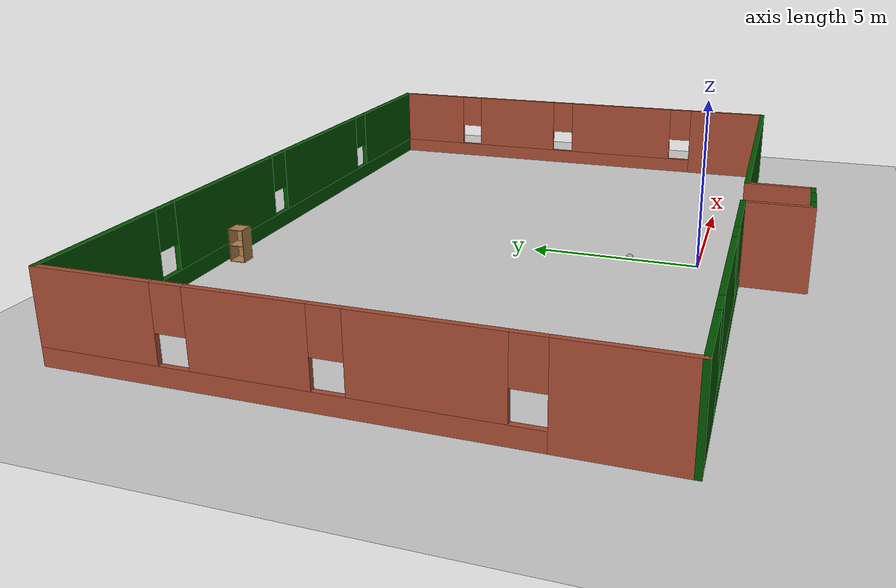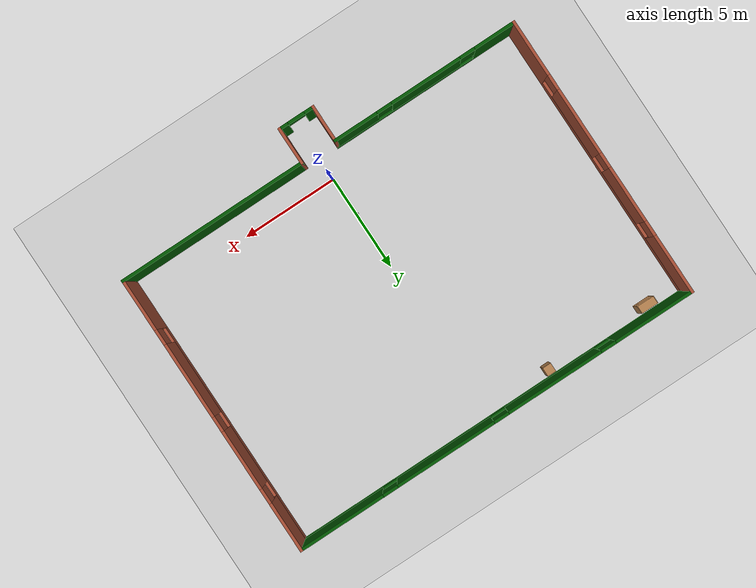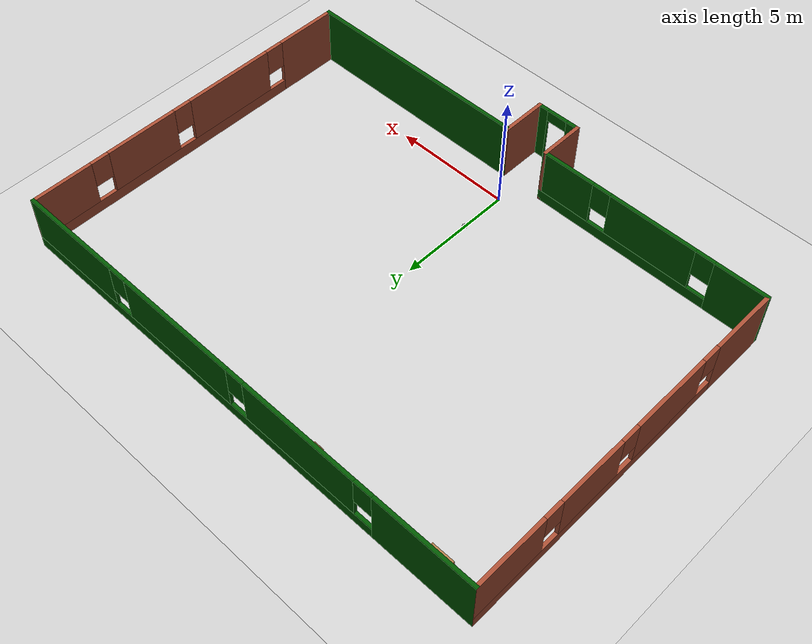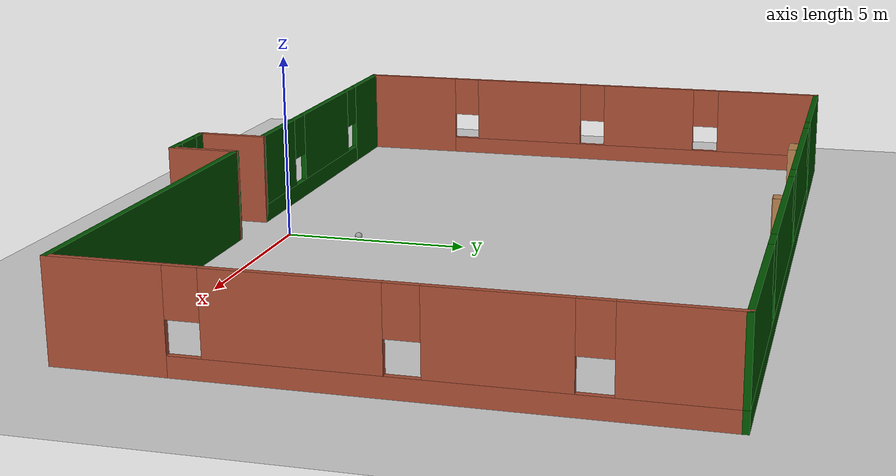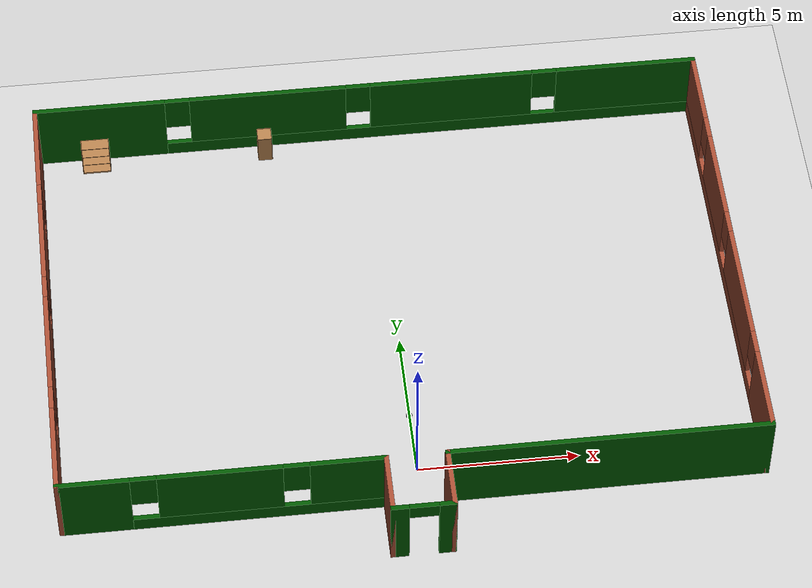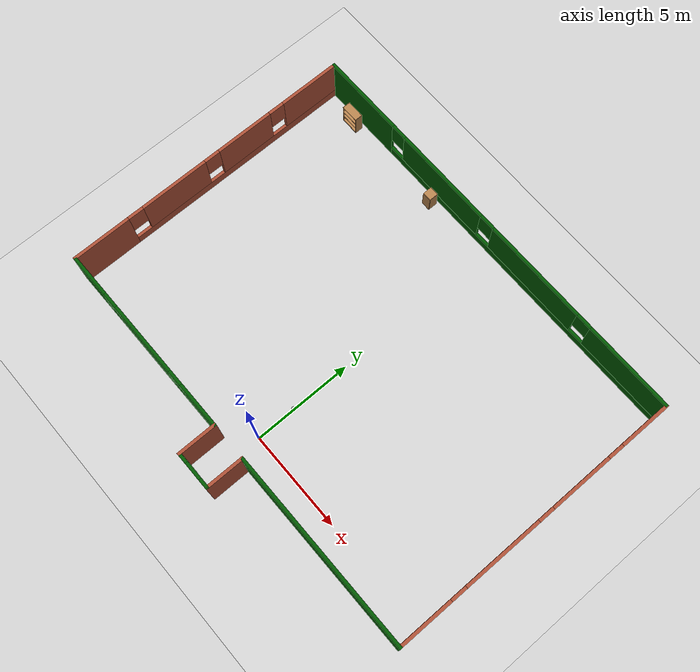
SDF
<sdf version="1.6">
 <world name="default">
  <light name="sun" type="directional">
   <pose>0 0 10 0 -0 0</pose>
   <diffuse>0.8 0.8 0.8 1</diffuse>
   <specular>0.2 0.2 0.2 1</specular>
   <attenuation>
    <range>1000</range>
    <constant>0.9</constant>
    <linear>0.01</linear>
    <quadratic>0.001</quadratic>
   </attenuation>
   <direction>-0.5 0.1 -0.9</direction>
  </light>
  <model name="ground_plane">
   <static>1</static>
   <link name="link">
    <collision name="collision">
     <geometry><plane><normal>0 0 1</normal><size>100 100</size></plane></geometry>
     <surface>
      <contact><collide_bitmask>65535</collide_bitmask></contact>
      <friction><ode><mu>100</mu><mu2>50</mu2></ode></friction>
     </surface>
    </collision>
    <visual name="visual">
     <cast_shadows>0</cast_shadows>
     <geometry><plane><normal>0 0 1</normal><size>100 100</size></plane></geometry>
     <material>
      <script><uri>file://media/materials/scripts/gazebo.material</uri><name>Gazebo/Grey</name></script>
     </material>
    </visual>
   </link>
  </model>
  <gravity>0 0 -9.8</gravity>
  <magnetic_field>6e-06 2.3e-05 -4.2e-05</magnetic_field>
  <atmosphere type="adiabatic"/>
  <physics name="default_physics" default="0" type="ode">
   <max_step_size>0.001</max_step_size>
   <real_time_factor>1</real_time_factor>
   <real_time_update_rate>1000</real_time_update_rate>
  </physics>
  <scene><ambient>0.4 0.4 0.4 1</ambient><background>0.7 0.7 0.7 1</background><shadows>1</shadows></scene>
  <spherical_coordinates>
   <surface_model>EARTH_WGS84</surface_model>
   <latitude_deg>0</latitude_deg>
   <longitude_deg>0</longitude_deg>
   <elevation>0</elevation>
   <heading_deg>0</heading_deg>
  </spherical_coordinates>
  <model name="awesomeWorld">
   <pose>-0.150676 5.3134 0 0 -0 0</pose>
   <link name="Wall_10">
    <pose>0 -8.35 0 0 -0 0</pose>
    <visual name="Wall_10_Visual_0">
     <pose>-0.719355 0 1.25 0 -0 0</pose>
     <geometry><box><size>0.56129 0.15 2.5</size></box></geometry>
     <material>
      <script><uri>file://media/materials/scripts/gazebo.material</uri><name>Gazebo/Grey</name></script>
      <ambient>0 0.333333 0 1</ambient>
     </material>
     <meta><layer>0</layer></meta>
    </visual>
    <collision name="Wall_10_Collision_0">
     <geometry><box><size>0.56129 0.15 2.5</size></box></geometry>
     <pose>-0.719355 0 1.25 0 -0 0</pose>
    </collision>
    <visual name="Wall_10_Visual_1">
     <pose>0.730645 0 1.25 0 -0 0</pose>
     <geometry><box><size>0.53871 0.15 2.5</size></box></geometry>
     <material>
      <script><uri>file://media/materials/scripts/gazebo.material</uri><name>Gazebo/Grey</name></script>
      <ambient>0 0.333333 0 1</ambient>
     </material>
     <meta><layer>0</layer></meta>
    </visual>
    <collision name="Wall_10_Collision_1">
     <geometry><box><size>0.53871 0.15 2.5</size></box></geometry>
     <pose>0.730645 0 1.25 0 -0 0</pose>
    </collision>
    <visual name="Wall_10_Visual_2">
     <pose>0.01129 0 2.25 0 -0 0</pose>
     <geometry><box><size>0.9 0.15 0.5</size></box></geometry>
     <material>
      <script><uri>file://media/materials/scripts/gazebo.material</uri><name>Gazebo/Grey</name></script>
      <ambient>0 0.333333 0 1</ambient>
     </material>
     <meta><layer>0</layer></meta>
    </visual>
    <collision name="Wall_10_Collision_2">
     <geometry><box><size>0.9 0.15 0.5</size></box></geometry>
     <pose>0.01129 0 2.25 0 -0 0</pose>
    </collision>
   </link>
   <link name="Wall_11">
    <collision name="Wall_11_Collision">
     <geometry><box><size>2 0.15 2.5</size></box></geometry>
     <pose>0 0 1.25 0 -0 0</pose>
    </collision>
    <visual name="Wall_11_Visual">
     <pose>0 0 1.25 0 -0 0</pose>
     <geometry><box><size>2 0.15 2.5</size></box></geometry>
     <material>
      <script><uri>file://media/materials/scripts/gazebo.material</uri><name>Gazebo/Bricks</name></script>
      <ambient>1 1 1 1</ambient>
     </material>
     <meta><layer>0</layer></meta>
    </visual>
    <pose>0.925 -7.425 0 0 -0 1.5708</pose>
   </link>
   <link name="Wall_12">
    <collision name="Wall_12_Collision">
     <geometry><box><size>10 0.15 2.5</size></box></geometry>
     <pose>0 0 1.25 0 -0 0</pose>
    </collision>
    <visual name="Wall_12_Visual">
     <pose>0 0 1.25 0 -0 0</pose>
     <geometry><box><size>10 0.15 2.5</size></box></geometry>
     <material>
      <script><uri>file://media/materials/scripts/gazebo.material</uri><name>Gazebo/Grey</name></script>
      <ambient>0 0.333333 0 1</ambient>
     </material>
     <meta><layer>0</layer></meta>
    </visual>
    <pose>5.85 -6.5 0 0 -0 0</pose>
   </link>
   <link name="Wall_13">
    <pose>10.775 0.925 0 0 -0 1.5708</pose>
    <visual name="Wall_13_Visual_0">
     <pose>-6.1078 0 1.25 0 -0 0</pose>
     <geometry><box><size>2.78439 0.15 2.5</size></box></geometry>
     <material>
      <script><uri>file://media/materials/scripts/gazebo.material</uri><name>Gazebo/Bricks</name></script>
      <ambient>1 1 1 1</ambient>
     </material>
     <meta><layer>0</layer></meta>
    </visual>
    <collision name="Wall_13_Collision_0">
     <geometry><box><size>2.78439 0.15 2.5</size></box></geometry>
     <pose>-6.1078 0 1.25 0 -0 0</pose>
    </collision>
    <visual name="Wall_13_Visual_1">
     <pose>1.3922 0 0.25 0 -0 0</pose>
     <geometry><box><size>12.2156 0.15 0.5</size></box></geometry>
     <material>
      <script><uri>file://media/materials/scripts/gazebo.material</uri><name>Gazebo/Bricks</name></script>
      <ambient>1 1 1 1</ambient>
     </material>
     <meta><layer>0</layer></meta>
    </visual>
    <collision name="Wall_13_Collision_1">
     <geometry><box><size>12.2156 0.15 0.5</size></box></geometry>
     <pose>1.3922 0 0.25 0 -0 0</pose>
    </collision>
    <visual name="Wall_13_Visual_2">
     <pose>-1.91602 0 1.5 0 -0 0</pose>
     <geometry><box><size>3.99917 0.15 2</size></box></geometry>
     <material>
      <script><uri>file://media/materials/scripts/gazebo.material</uri><name>Gazebo/Bricks</name></script>
      <ambient>1 1 1 1</ambient>
     </material>
     <meta><layer>0</layer></meta>
    </visual>
    <collision name="Wall_13_Collision_2">
     <geometry><box><size>3.99917 0.15 2</size></box></geometry>
     <pose>-1.91602 0 1.5 0 -0 0</pose>
    </collision>
    <visual name="Wall_13_Visual_3">
     <pose>2.46784 0 1.5 0 -0 0</pose>
     <geometry><box><size>3.16855 0.15 2</size></box></geometry>
     <material>
      <script><uri>file://media/materials/scripts/gazebo.material</uri><name>Gazebo/Bricks</name></script>
      <ambient>1 1 1 1</ambient>
     </material>
     <meta><layer>0</layer></meta>
    </visual>
    <collision name="Wall_13_Collision_3">
     <geometry><box><size>3.16855 0.15 2</size></box></geometry>
     <pose>2.46784 0 1.5 0 -0 0</pose>
    </collision>
    <visual name="Wall_13_Visual_4">
     <pose>6.17606 0 1.5 0 -0 0</pose>
     <geometry><box><size>2.64788 0.15 2</size></box></geometry>
     <material>
      <script><uri>file://media/materials/scripts/gazebo.material</uri><name>Gazebo/Bricks</name></script>
      <ambient>1 1 1 1</ambient>
     </material>
     <meta><layer>0</layer></meta>
    </visual>
    <collision name="Wall_13_Collision_4">
     <geometry><box><size>2.64788 0.15 2</size></box></geometry>
     <pose>6.17606 0 1.5 0 -0 0</pose>
    </collision>
    <visual name="Wall_13_Visual_5">
     <pose>-4.31561 0 1.9 0 -0 0</pose>
     <geometry><box><size>0.8 0.15 1.2</size></box></geometry>
     <material>
      <script><uri>file://media/materials/scripts/gazebo.material</uri><name>Gazebo/Bricks</name></script>
      <ambient>1 1 1 1</ambient>
     </material>
     <meta><layer>0</layer></meta>
    </visual>
    <collision name="Wall_13_Collision_5">
     <geometry><box><size>0.8 0.15 1.2</size></box></geometry>
     <pose>-4.31561 0 1.9 0 -0 0</pose>
    </collision>
    <visual name="Wall_13_Visual_6">
     <pose>0.483568 0 1.9 0 -0 0</pose>
     <geometry><box><size>0.8 0.15 1.2</size></box></geometry>
     <material>
      <script><uri>file://media/materials/scripts/gazebo.material</uri><name>Gazebo/Bricks</name></script>
      <ambient>1 1 1 1</ambient>
     </material>
     <meta><layer>0</layer></meta>
    </visual>
    <collision name="Wall_13_Collision_6">
     <geometry><box><size>0.8 0.15 1.2</size></box></geometry>
     <pose>0.483568 0 1.9 0 -0 0</pose>
    </collision>
    <visual name="Wall_13_Visual_7">
     <pose>4.45212 0 1.9 0 -0 0</pose>
     <geometry><box><size>0.8 0.15 1.2</size></box></geometry>
     <material>
      <script><uri>file://media/materials/scripts/gazebo.material</uri><name>Gazebo/Bricks</name></script>
      <ambient>1 1 1 1</ambient>
     </material>
     <meta><layer>0</layer></meta>
    </visual>
    <collision name="Wall_13_Collision_7">
     <geometry><box><size>0.8 0.15 1.2</size></box></geometry>
     <pose>4.45212 0 1.9 0 -0 0</pose>
    </collision>
   </link>
   <link name="Wall_20">
    <pose>-10.775 0.925 0 0 -0 1.5708</pose>
    <visual name="Wall_20_Visual_0">
     <pose>-6.01551 0 1.25 0 -0 0</pose>
     <geometry><box><size>2.96898 0.15 2.5</size></box></geometry>
     <material>
      <script><uri>file://media/materials/scripts/gazebo.material</uri><name>Gazebo/Bricks</name></script>
      <ambient>1 1 1 1</ambient>
     </material>
     <meta><layer>0</layer></meta>
    </visual>
    <collision name="Wall_20_Collision_0">
     <geometry><box><size>2.96898 0.15 2.5</size></box></geometry>
     <pose>-6.01551 0 1.25 0 -0 0</pose>
    </collision>
    <visual name="Wall_20_Visual_1">
     <pose>1.48449 0 0.25 0 -0 0</pose>
     <geometry><box><size>12.031 0.15 0.5</size></box></geometry>
     <material>
      <script><uri>file://media/materials/scripts/gazebo.material</uri><name>Gazebo/Bricks</name></script>
      <ambient>1 1 1 1</ambient>
     </material>
     <meta><layer>0</layer></meta>
    </visual>
    <collision name="Wall_20_Collision_1">
     <geometry><box><size>12.031 0.15 0.5</size></box></geometry>
     <pose>1.48449 0 0.25 0 -0 0</pose>
    </collision>
    <visual name="Wall_20_Visual_2">
     <pose>-1.97755 0 1.5 0 -0 0</pose>
     <geometry><box><size>3.50695 0.15 2</size></box></geometry>
     <material>
      <script><uri>file://media/materials/scripts/gazebo.material</uri><name>Gazebo/Bricks</name></script>
      <ambient>1 1 1 1</ambient>
     </material>
     <meta><layer>0</layer></meta>
    </visual>
    <collision name="Wall_20_Collision_2">
     <geometry><box><size>3.50695 0.15 2</size></box></geometry>
     <pose>-1.97755 0 1.5 0 -0 0</pose>
    </collision>
    <visual name="Wall_20_Visual_3">
     <pose>2.05253 0 1.5 0 -0 0</pose>
     <geometry><box><size>2.9532 0.15 2</size></box></geometry>
     <material>
      <script><uri>file://media/materials/scripts/gazebo.material</uri><name>Gazebo/Bricks</name></script>
      <ambient>1 1 1 1</ambient>
     </material>
     <meta><layer>0</layer></meta>
    </visual>
    <collision name="Wall_20_Collision_3">
     <geometry><box><size>2.9532 0.15 2</size></box></geometry>
     <pose>2.05253 0 1.5 0 -0 0</pose>
    </collision>
    <visual name="Wall_20_Visual_4">
     <pose>5.91456 0 1.5 0 -0 0</pose>
     <geometry><box><size>3.17087 0.15 2</size></box></geometry>
     <material>
      <script><uri>file://media/materials/scripts/gazebo.material</uri><name>Gazebo/Bricks</name></script>
      <ambient>1 1 1 1</ambient>
     </material>
     <meta><layer>0</layer></meta>
    </visual>
    <collision name="Wall_20_Collision_4">
     <geometry><box><size>3.17087 0.15 2</size></box></geometry>
     <pose>5.91456 0 1.5 0 -0 0</pose>
    </collision>
    <visual name="Wall_20_Visual_5">
     <pose>-4.13102 0 1.9 0 -0 0</pose>
     <geometry><box><size>0.8 0.15 1.2</size></box></geometry>
     <material>
      <script><uri>file://media/materials/scripts/gazebo.material</uri><name>Gazebo/Bricks</name></script>
      <ambient>1 1 1 1</ambient>
     </material>
     <meta><layer>0</layer></meta>
    </visual>
    <collision name="Wall_20_Collision_5">
     <geometry><box><size>0.8 0.15 1.2</size></box></geometry>
     <pose>-4.13102 0 1.9 0 -0 0</pose>
    </collision>
    <visual name="Wall_20_Visual_6">
     <pose>0.175929 0 1.9 0 -0 0</pose>
     <geometry><box><size>0.8 0.15 1.2</size></box></geometry>
     <material>
      <script><uri>file://media/materials/scripts/gazebo.material</uri><name>Gazebo/Bricks</name></script>
      <ambient>1 1 1 1</ambient>
     </material>
     <meta><layer>0</layer></meta>
    </visual>
    <collision name="Wall_20_Collision_6">
     <geometry><box><size>0.8 0.15 1.2</size></box></geometry>
     <pose>0.175929 0 1.9 0 -0 0</pose>
    </collision>
    <visual name="Wall_20_Visual_7">
     <pose>3.92913 0 1.9 0 -0 0</pose>
     <geometry><box><size>0.8 0.15 1.2</size></box></geometry>
     <material>
      <script><uri>file://media/materials/scripts/gazebo.material</uri><name>Gazebo/Bricks</name></script>
      <ambient>1 1 1 1</ambient>
     </material>
     <meta><layer>0</layer></meta>
    </visual>
    <collision name="Wall_20_Collision_7">
     <geometry><box><size>0.8 0.15 1.2</size></box></geometry>
     <pose>3.92913 0 1.9 0 -0 0</pose>
    </collision>
   </link>
   <link name="Wall_22">
    <pose>0 8.35 0 0 -0 0</pose>
    <visual name="Wall_22_Visual_0">
     <pose>-8.71113 0 1.25 0 -0 0</pose>
     <geometry><box><size>4.27774 0.15 2.5</size></box></geometry>
     <material>
      <script><uri>file://media/materials/scripts/gazebo.material</uri><name>Gazebo/Grey</name></script>
      <ambient>0 0.333333 0 1</ambient>
     </material>
     <meta><layer>0</layer></meta>
    </visual>
    <collision name="Wall_22_Collision_0">
     <geometry><box><size>4.27774 0.15 2.5</size></box></geometry>
     <pose>-8.71113 0 1.25 0 -0 0</pose>
    </collision>
    <visual name="Wall_22_Visual_1">
     <pose>2.13887 0 0.25 0 -0 0</pose>
     <geometry><box><size>17.4223 0.15 0.5</size></box></geometry>
     <material>
      <script><uri>file://media/materials/scripts/gazebo.material</uri><name>Gazebo/Grey</name></script>
      <ambient>0 0.333333 0 1</ambient>
     </material>
     <meta><layer>0</layer></meta>
    </visual>
    <collision name="Wall_22_Collision_1">
     <geometry><box><size>17.4223 0.15 0.5</size></box></geometry>
     <pose>2.13887 0 0.25 0 -0 0</pose>
    </collision>
    <visual name="Wall_22_Visual_2">
     <pose>-3.21892 0 1.5 0 -0 0</pose>
     <geometry><box><size>5.10668 0.15 2</size></box></geometry>
     <material>
      <script><uri>file://media/materials/scripts/gazebo.material</uri><name>Gazebo/Grey</name></script>
      <ambient>0 0.333333 0 1</ambient>
     </material>
     <meta><layer>0</layer></meta>
    </visual>
    <collision name="Wall_22_Collision_2">
     <geometry><box><size>5.10668 0.15 2</size></box></geometry>
     <pose>-3.21892 0 1.5 0 -0 0</pose>
    </collision>
    <visual name="Wall_22_Visual_3">
     <pose>2.79543 0 1.5 0 -0 0</pose>
     <geometry><box><size>5.32202 0.15 2</size></box></geometry>
     <material>
      <script><uri>file://media/materials/scripts/gazebo.material</uri><name>Gazebo/Grey</name></script>
      <ambient>0 0.333333 0 1</ambient>
     </material>
     <meta><layer>0</layer></meta>
    </visual>
    <collision name="Wall_22_Collision_3">
     <geometry><box><size>5.32202 0.15 2</size></box></geometry>
     <pose>2.79543 0 1.5 0 -0 0</pose>
    </collision>
    <visual name="Wall_22_Visual_4">
     <pose>8.55322 0 1.5 0 -0 0</pose>
     <geometry><box><size>4.59356 0.15 2</size></box></geometry>
     <material>
      <script><uri>file://media/materials/scripts/gazebo.material</uri><name>Gazebo/Grey</name></script>
      <ambient>0 0.333333 0 1</ambient>
     </material>
     <meta><layer>0</layer></meta>
    </visual>
    <collision name="Wall_22_Collision_4">
     <geometry><box><size>4.59356 0.15 2</size></box></geometry>
     <pose>8.55322 0 1.5 0 -0 0</pose>
    </collision>
    <visual name="Wall_22_Visual_5">
     <pose>-6.17226 0 1.9 0 -0 0</pose>
     <geometry><box><size>0.8 0.15 1.2</size></box></geometry>
     <material>
      <script><uri>file://media/materials/scripts/gazebo.material</uri><name>Gazebo/Grey</name></script>
      <ambient>0 0.333333 0 1</ambient>
     </material>
     <meta><layer>0</layer></meta>
    </visual>
    <collision name="Wall_22_Collision_5">
     <geometry><box><size>0.8 0.15 1.2</size></box></geometry>
     <pose>-6.17226 0 1.9 0 -0 0</pose>
    </collision>
    <visual name="Wall_22_Visual_6">
     <pose>-0.265586 0 1.9 0 -0 0</pose>
     <geometry><box><size>0.8 0.15 1.2</size></box></geometry>
     <material>
      <script><uri>file://media/materials/scripts/gazebo.material</uri><name>Gazebo/Grey</name></script>
      <ambient>0 0.333333 0 1</ambient>
     </material>
     <meta><layer>0</layer></meta>
    </visual>
    <collision name="Wall_22_Collision_6">
     <geometry><box><size>0.8 0.15 1.2</size></box></geometry>
     <pose>-0.265586 0 1.9 0 -0 0</pose>
    </collision>
    <visual name="Wall_22_Visual_7">
     <pose>5.85644 0 1.9 0 -0 0</pose>
     <geometry><box><size>0.8 0.15 1.2</size></box></geometry>
     <material>
      <script><uri>file://media/materials/scripts/gazebo.material</uri><name>Gazebo/Grey</name></script>
      <ambient>0 0.333333 0 1</ambient>
     </material>
     <meta><layer>0</layer></meta>
    </visual>
    <collision name="Wall_22_Collision_7">
     <geometry><box><size>0.8 0.15 1.2</size></box></geometry>
     <pose>5.85644 0 1.9 0 -0 0</pose>
    </collision>
   </link>
   <link name="Wall_8">
    <pose>-5.85 -6.5 0 0 -0 0</pose>
    <visual name="Wall_8_Visual_0">
     <pose>-3.87634 0 1.25 0 -0 0</pose>
     <geometry><box><size>2.24732 0.15 2.5</size></box></geometry>
     <material>
      <script><uri>file://media/materials/scripts/gazebo.material</uri><name>Gazebo/Grey</name></script>
      <ambient>0 0.333333 0 1</ambient>
     </material>
     <meta><layer>0</layer></meta>
    </visual>
    <collision name="Wall_8_Collision_0">
     <geometry><box><size>2.24732 0.15 2.5</size></box></geometry>
     <pose>-3.87634 0 1.25 0 -0 0</pose>
    </collision>
    <visual name="Wall_8_Visual_1">
     <pose>1.12366 0 0.25 0 -0 0</pose>
     <geometry><box><size>7.75268 0.15 0.5</size></box></geometry>
     <material>
      <script><uri>file://media/materials/scripts/gazebo.material</uri><name>Gazebo/Grey</name></script>
      <ambient>0 0.333333 0 1</ambient>
     </material>
     <meta><layer>0</layer></meta>
    </visual>
    <collision name="Wall_8_Collision_1">
     <geometry><box><size>7.75268 0.15 0.5</size></box></geometry>
     <pose>1.12366 0 0.25 0 -0 0</pose>
    </collision>
    <visual name="Wall_8_Visual_2">
     <pose>-0.060769 0 1.5 0 -0 0</pose>
     <geometry><box><size>3.78383 0.15 2</size></box></geometry>
     <material>
      <script><uri>file://media/materials/scripts/gazebo.material</uri><name>Gazebo/Grey</name></script>
      <ambient>0 0.333333 0 1</ambient>
     </material>
     <meta><layer>0</layer></meta>
    </visual>
    <collision name="Wall_8_Collision_2">
     <geometry><box><size>3.78383 0.15 2</size></box></geometry>
     <pose>-0.060769 0 1.5 0 -0 0</pose>
    </collision>
    <visual name="Wall_8_Visual_3">
     <pose>3.81557 0 1.5 0 -0 0</pose>
     <geometry><box><size>2.36885 0.15 2</size></box></geometry>
     <material>
      <script><uri>file://media/materials/scripts/gazebo.material</uri><name>Gazebo/Grey</name></script>
      <ambient>0 0.333333 0 1</ambient>
     </material>
     <meta><layer>0</layer></meta>
    </visual>
    <collision name="Wall_8_Collision_3">
     <geometry><box><size>2.36885 0.15 2</size></box></geometry>
     <pose>3.81557 0 1.5 0 -0 0</pose>
    </collision>
    <visual name="Wall_8_Visual_4">
     <pose>-2.35268 0 1.9 0 -0 0</pose>
     <geometry><box><size>0.8 0.15 1.2</size></box></geometry>
     <material>
      <script><uri>file://media/materials/scripts/gazebo.material</uri><name>Gazebo/Grey</name></script>
      <ambient>0 0.333333 0 1</ambient>
     </material>
     <meta><layer>0</layer></meta>
    </visual>
    <collision name="Wall_8_Collision_4">
     <geometry><box><size>0.8 0.15 1.2</size></box></geometry>
     <pose>-2.35268 0 1.9 0 -0 0</pose>
    </collision>
    <visual name="Wall_8_Visual_5">
     <pose>2.23115 0 1.9 0 -0 0</pose>
     <geometry><box><size>0.8 0.15 1.2</size></box></geometry>
     <material>
      <script><uri>file://media/materials/scripts/gazebo.material</uri><name>Gazebo/Grey</name></script>
      <ambient>0 0.333333 0 1</ambient>
     </material>
     <meta><layer>0</layer></meta>
    </visual>
    <collision name="Wall_8_Collision_5">
     <geometry><box><size>0.8 0.15 1.2</size></box></geometry>
     <pose>2.23115 0 1.9 0 -0 0</pose>
    </collision>
   </link>
   <link name="Wall_9">
    <collision name="Wall_9_Collision">
     <geometry><box><size>2 0.15 2.5</size></box></geometry>
     <pose>0 0 1.25 0 -0 0</pose>
    </collision>
    <visual name="Wall_9_Visual">
     <pose>0 0 1.25 0 -0 0</pose>
     <geometry><box><size>2 0.15 2.5</size></box></geometry>
     <material>
      <script><uri>file://media/materials/scripts/gazebo.material</uri><name>Gazebo/Bricks</name></script>
      <ambient>1 1 1 1</ambient>
     </material>
     <meta><layer>0</layer></meta>
    </visual>
    <pose>-0.925 -7.425 0 0 0 -1.5708</pose>
   </link>
   <static>1</static>
  </model>
  <model name="bookshelf">
   <static>1</static>
   <link name="link">
    <inertial><mass>1</mass></inertial>
    <collision name="back">
     <pose>0 0.005 0.6 0 -0 0</pose>
     <geometry><box><size>0.9 0.01 1.2</size></box></geometry>
    </collision>
    <visual name="visual1">
     <pose>0 0.005 0.6 0 -0 0</pose>
     <geometry><box><size>0.9 0.01 1.2</size></box></geometry>
     <material>
      <script><uri>file://media/materials/scripts/gazebo.material</uri><name>Gazebo/Wood</name></script>
     </material>
    </visual>
    <collision name="left_side">
     <pose>0.45 -0.195 0.6 0 -0 0</pose>
     <geometry><box><size>0.02 0.4 1.2</size></box></geometry>
    </collision>
    <visual name="visual2">
     <pose>0.45 -0.195 0.6 0 -0 0</pose>
     <geometry><box><size>0.02 0.4 1.2</size></box></geometry>
     <material>
      <script><uri>file://media/materials/scripts/gazebo.material</uri><name>Gazebo/Wood</name></script>
     </material>
    </visual>
    <collision name="right_side">
     <pose>-0.45 -0.195 0.6 0 -0 0</pose>
     <geometry><box><size>0.02 0.4 1.2</size></box></geometry>
    </collision>
    <visual name="visual3">
     <pose>-0.45 -0.195 0.6 0 -0 0</pose>
     <geometry><box><size>0.02 0.4 1.2</size></box></geometry>
     <material>
      <script><uri>file://media/materials/scripts/gazebo.material</uri><name>Gazebo/Wood</name></script>
     </material>
    </visual>
    <collision name="bottom">
     <pose>0 -0.195 0.03 0 -0 0</pose>
     <geometry><box><size>0.88 0.4 0.06</size></box></geometry>
    </collision>
    <visual name="visual4">
     <pose>0 -0.195 0.03 0 -0 0</pose>
     <geometry><box><size>0.88 0.4 0.06</size></box></geometry>
     <material>
      <script><uri>file://media/materials/scripts/gazebo.material</uri><name>Gazebo/Wood</name></script>
     </material>
    </visual>
    <collision name="top">
     <pose>0 -0.195 1.19 0 -0 0</pose>
     <geometry><box><size>0.88 0.4 0.02</size></box></geometry>
    </collision>
    <visual name="visual5">
     <pose>0 -0.195 1.19 0 -0 0</pose>
     <geometry><box><size>0.88 0.4 0.02</size></box></geometry>
     <material>
      <script><uri>file://media/materials/scripts/gazebo.material</uri><name>Gazebo/Wood</name></script>
     </material>
    </visual>
    <collision name="low_shelf">
     <pose>0 -0.195 0.43 0 -0 0</pose>
     <geometry><box><size>0.88 0.4 0.02</size></box></geometry>
    </collision>
    <visual name="visual6">
     <pose>0 -0.195 0.43 0 -0 0</pose>
     <geometry><box><size>0.88 0.4 0.02</size></box></geometry>
     <material>
      <script><uri>file://media/materials/scripts/gazebo.material</uri><name>Gazebo/Wood</name></script>
     </material>
    </visual>
    <collision name="high_shelf">
     <pose>0 -0.195 0.8 0 -0 0</pose>
     <geometry><box><size>0.88 0.4 0.02</size></box></geometry>
    </collision>
    <visual name="visual7">
     <pose>0 -0.195 0.8 0 -0 0</pose>
     <geometry><box><size>0.88 0.4 0.02</size></box></geometry>
     <material>
      <script><uri>file://media/materials/scripts/gazebo.material</uri><name>Gazebo/Wood</name></script>
     </material>
    </visual>
   </link>
   <pose>-9.0919 13.3954 0 0 -0 0</pose>
  </model>
  <model name="cabinet">
   <static>1</static>
   <link name="cabinet_bottom_plate">
    <inertial>
     <pose>0 0 -1 0 -0 0</pose>
     <inertia><ixx>2.05</ixx><ixy>0</ixy><ixz>0</ixz><iyy>2.05</iyy><iyz>0</iyz><izz>2.05</izz></inertia>
     <mass>25</mass>
    </inertial>
    <collision name="cabinet_bottom_plate_geom">
     <pose>0 0 0.01 0 -0 0</pose>
     <geometry><box><size>0.45 0.45 0.02</size></box></geometry>
    </collision>
    <visual name="cabinet_bottom_plate_geom_visual">
     <pose>0 0 0.01 0 -0 0</pose>
     <geometry><box><size>0.45 0.45 0.02</size></box></geometry>
     <material>
      <script><uri>file://media/materials/scripts/gazebo.material</uri><name>Gazebo/Wood</name></script>
     </material>
    </visual>
    <collision name="cabinet_bottom_plate_geom_cabinet_back_plate">
     <pose>0.235 0 0.51 0 -0 0</pose>
     <geometry><box><size>0.02 0.45 1.02</size></box></geometry>
    </collision>
    <visual name="cabinet_bottom_plate_geom_cabinet_back_plate_visual">
     <pose>0.235 0 0.51 0 -0 0</pose>
     <geometry><box><size>0.02 0.45 1.02</size></box></geometry>
     <material>
      <script><uri>file://media/materials/scripts/gazebo.material</uri><name>Gazebo/Wood</name></script>
     </material>
    </visual>
    <collision name="cabinet_bottom_plate_geom_cabinet_left_plate">
     <pose>0 0.235 0.51 0 -0 0</pose>
     <geometry><box><size>0.45 0.02 1.02</size></box></geometry>
    </collision>
    <visual name="cabinet_bottom_plate_geom_cabinet_left_plate_visual">
     <pose>0 0.235 0.51 0 -0 0</pose>
     <geometry><box><size>0.45 0.02 1.02</size></box></geometry>
     <material>
      <script><uri>file://media/materials/scripts/gazebo.material</uri><name>Gazebo/Wood</name></script>
     </material>
    </visual>
    <collision name="cabinet_bottom_plate_geom_cabinet_middle_plate">
     <pose>0 0 0.51 0 -0 0</pose>
     <geometry><box><size>0.45 0.45 0.02</size></box></geometry>
    </collision>
    <visual name="cabinet_bottom_plate_geom_cabinet_middle_plate_visual">
     <pose>0 0 0.51 0 -0 0</pose>
     <geometry><box><size>0.45 0.45 0.02</size></box></geometry>
     <material>
      <script><uri>file://media/materials/scripts/gazebo.material</uri><name>Gazebo/Wood</name></script>
     </material>
    </visual>
    <collision name="cabinet_bottom_plate_geom_cabinet_right_plate">
     <pose>0 -0.235 0.51 0 -0 0</pose>
     <geometry><box><size>0.45 0.02 1.02</size></box></geometry>
    </collision>
    <visual name="cabinet_bottom_plate_geom_cabinet_right_plate_visual">
     <pose>0 -0.235 0.51 0 -0 0</pose>
     <geometry><box><size>0.45 0.02 1.02</size></box></geometry>
     <material>
      <script><uri>file://media/materials/scripts/gazebo.material</uri><name>Gazebo/Wood</name></script>
     </material>
    </visual>
    <collision name="cabinet_bottom_plate_geom_cabinet_top_plate">
     <pose>0 0 1.01 0 -0 0</pose>
     <geometry><box><size>0.45 0.45 0.02</size></box></geometry>
    </collision>
    <visual name="cabinet_bottom_plate_geom_cabinet_top_plate_visual">
     <pose>0 0 1.01 0 -0 0</pose>
     <geometry><box><size>0.45 0.45 0.02</size></box></geometry>
     <material>
      <script><uri>file://media/materials/scripts/gazebo.material</uri><name>Gazebo/Wood</name></script>
     </material>
    </visual>
   </link>
   <pose>-3.5578 13.2113 0 0 -0 0</pose>
  </model>
  <model name="my_ball">
   <link name="link_0">
    <inertial>
     <mass>1</mass>
     <inertia><ixx>0.1</ixx><ixy>0</ixy><ixz>0</ixz><iyy>0.1</iyy><iyz>0</iyz><izz>0.1</izz></inertia>
    </inertial>
    <visual name="visual">
     <geometry><sphere><radius>0.1</radius></sphere></geometry>
     <material>
      <lighting>1</lighting>
      <script><uri>file://media/materials/scripts/gazebo.material</uri><name>Gazebo/Grey</name></script>
      <shader type="pixel"><normal_map>__default__</normal_map></shader>
      <ambient>1 1 1 1</ambient>
      <diffuse>1 1 1 1</diffuse>
      <specular>1 1 1 1</specular>
      <emissive>1 1 1 1</emissive>
     </material>
    </visual>
    <collision name="collision">
     <geometry><sphere><radius>0.1</radius></sphere></geometry>
     <surface>
      <friction>
       <ode><mu>1</mu><mu2>1</mu2><fdir1>0 0 0</fdir1><slip1>0</slip1><slip2>0</slip2></ode>
       <torsional>
        <coefficient>1</coefficient>
        <patch_radius>0</patch_radius>
        <surface_radius>0</surface_radius>
        <use_patch_radius>1</use_patch_radius>
        <ode><slip>0</slip></ode>
       </torsional>
      </friction>
      <bounce><restitution_coefficient>0</restitution_coefficient><threshold>1e+06</threshold></bounce>
      <contact>
       <collide_without_contact>0</collide_without_contact>
       <collide_without_contact_bitmask>1</collide_without_contact_bitmask>
       <collide_bitmask>1</collide_bitmask>
       <ode>
        <soft_cfm>0</soft_cfm>
        <soft_erp>0.2</soft_erp>
        <kp>1e+13</kp>
        <kd>1</kd>
        <max_vel>0.01</max_vel>
        <min_depth>0</min_depth>
       </ode>
       <bullet>
        <split_impulse>1</split_impulse>
        <split_impulse_penetration_threshold>-0.01</split_impulse_penetration_threshold>
        <soft_cfm>0</soft_cfm>
        <soft_erp>0.2</soft_erp>
        <kp>1e+13</kp>
        <kd>1</kd>
       </bullet>
      </contact>
     </surface>
    </collision>
   </link>
   <static>0</static>
   <pose>-0.02274 2.01528 0.1 0 -0 0</pose>
  </model>
 </world>
</sdf>
